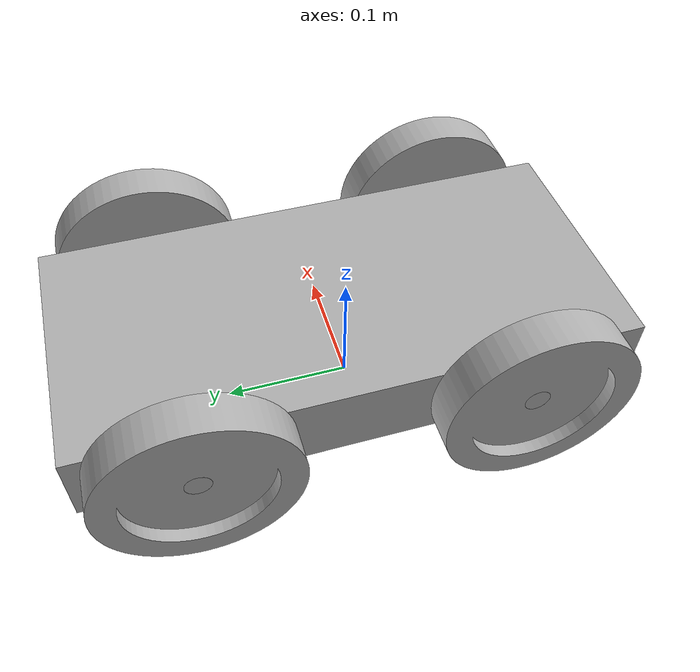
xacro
<?xml version="1.0" ?>
<robot name="plain_vehicle" xmlns:xacro="http://www.ros.org/wiki/xacro">

<xacro:include filename="$(find plain_vehicle_description)/urdf/materials.xacro" />
<xacro:include filename="$(find plain_vehicle_description)/urdf/plain_vehicle.trans" />
<xacro:include filename="$(find plain_vehicle_description)/urdf/plain_vehicle.gazebo" />
<link name="base_link">
  <inertial>
    <origin xyz="0.00020943697105553702 0.012630866610617823 0.07000000000000002" rpy="0 0 0"/>
    <mass value="40.17043511395142"/>
    <inertia ixx="0.61744" iyy="0.147074" izz="0.74052" ixy="0.0" iyz="0.0" ixz="0.0"/>
  </inertial>
  <visual>
    <origin xyz="0 0 0" rpy="0 0 0"/>
    <geometry>
      <mesh filename="file://$(find plain_vehicle_description)/meshes/base_link.stl" scale="0.001 0.001 0.001"/>
    </geometry>
    <material name="silver"/>
  </visual>
  <collision>
    <origin xyz="0 0 0" rpy="0 0 0"/>
    <geometry>
      <mesh filename="file://$(find plain_vehicle_description)/meshes/base_link.stl" scale="0.001 0.001 0.001"/>
    </geometry>
  </collision>
</link>

<link name="wheel_fr_1">
  <inertial>
    <origin xyz="-0.012857142857143025 1.5404344466674047e-14 1.3877787807814457e-17" rpy="0 0 0"/>
    <mass value="3.3662950681378008"/>
    <inertia ixx="0.010574" iyy="0.0055" izz="0.0055" ixy="-0.0" iyz="-0.0" ixz="-0.0"/>
  </inertial>
  <visual>
    <origin xyz="0.1 0.11 -0.07" rpy="0 0 0"/>
    <geometry>
      <mesh filename="file://$(find plain_vehicle_description)/meshes/wheel_fr_1.stl" scale="0.001 0.001 0.001"/>
    </geometry>
    <material name="silver"/>
  </visual>
  <collision>
    <origin xyz="0.1 0.11 -0.07" rpy="0 0 0"/>
    <geometry>
      <mesh filename="file://$(find plain_vehicle_description)/meshes/wheel_fr_1.stl" scale="0.001 0.001 0.001"/>
    </geometry>
  </collision>
</link>

<link name="wheel_rr_1">
  <inertial>
    <origin xyz="-0.0128571428571429 1.532107773982716e-14 1.3877787807814457e-16" rpy="0 0 0"/>
    <mass value="3.366295068137801"/>
    <inertia ixx="0.010574" iyy="0.0055" izz="0.0055" ixy="0.0" iyz="0.0" ixz="-0.0"/>
  </inertial>
  <visual>
    <origin xyz="0.1 -0.14 -0.07" rpy="0 0 0"/>
    <geometry>
      <mesh filename="file://$(find plain_vehicle_description)/meshes/wheel_rr_1.stl" scale="0.001 0.001 0.001"/>
    </geometry>
    <material name="silver"/>
  </visual>
  <collision>
    <origin xyz="0.1 -0.14 -0.07" rpy="0 0 0"/>
    <geometry>
      <mesh filename="file://$(find plain_vehicle_description)/meshes/wheel_rr_1.stl" scale="0.001 0.001 0.001"/>
    </geometry>
  </collision>
</link>

<link name="wheel_rl_1">
  <inertial>
    <origin xyz="0.012857142857142914 -1.534883331544279e-14 -1.3877787807814457e-17" rpy="0 0 0"/>
    <mass value="3.366295068137801"/>
    <inertia ixx="0.010574" iyy="0.0055" izz="0.0055" ixy="-0.0" iyz="-0.0" ixz="0.0"/>
  </inertial>
  <visual>
    <origin xyz="-0.1 -0.14 -0.07" rpy="0 0 0"/>
    <geometry>
      <mesh filename="file://$(find plain_vehicle_description)/meshes/wheel_rl_1.stl" scale="0.001 0.001 0.001"/>
    </geometry>
    <material name="silver"/>
  </visual>
  <collision>
    <origin xyz="-0.1 -0.14 -0.07" rpy="0 0 0"/>
    <geometry>
      <mesh filename="file://$(find plain_vehicle_description)/meshes/wheel_rl_1.stl" scale="0.001 0.001 0.001"/>
    </geometry>
  </collision>
</link>

<link name="wheel_fl_1">
  <inertial>
    <origin xyz="0.012857142857142817 -1.5404344466674047e-14 1.3877787807814457e-17" rpy="0 0 0"/>
    <mass value="3.3662950681378008"/>
    <inertia ixx="0.010574" iyy="0.0055" izz="0.0055" ixy="0.0" iyz="-0.0" ixz="-0.0"/>
  </inertial>
  <visual>
    <origin xyz="-0.1 0.11 -0.07" rpy="0 0 0"/>
    <geometry>
      <mesh filename="file://$(find plain_vehicle_description)/meshes/wheel_fl_1.stl" scale="0.001 0.001 0.001"/>
    </geometry>
    <material name="silver"/>
  </visual>
  <collision>
    <origin xyz="-0.1 0.11 -0.07" rpy="0 0 0"/>
    <geometry>
      <mesh filename="file://$(find plain_vehicle_description)/meshes/wheel_fl_1.stl" scale="0.001 0.001 0.001"/>
    </geometry>
  </collision>
</link>

<joint name="o_fr" type="continuous">
  <origin xyz="-0.1 -0.11 0.07" rpy="0 0 0"/>
  <parent link="base_link"/>
  <child link="wheel_fr_1"/>
  <axis xyz="1.0 0.0 0.0"/>
</joint>

<joint name="o_rr" type="continuous">
  <origin xyz="-0.1 0.14 0.07" rpy="0 0 0"/>
  <parent link="base_link"/>
  <child link="wheel_rr_1"/>
  <axis xyz="1.0 0.0 0.0"/>
</joint>

<joint name="o_rl" type="continuous">
  <origin xyz="0.1 0.14 0.07" rpy="0 0 0"/>
  <parent link="base_link"/>
  <child link="wheel_rl_1"/>
  <axis xyz="1.0 0.0 0.0"/>
</joint>

<joint name="o_fl" type="continuous">
  <origin xyz="0.1 -0.11 0.07" rpy="0 0 0"/>
  <parent link="base_link"/>
  <child link="wheel_fl_1"/>
  <axis xyz="1.0 0.0 0.0"/>
</joint>

</robot>

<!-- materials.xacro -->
<robot name="plain_vehicle" xmlns:xacro="http://www.ros.org/wiki/xacro" >

<material name="silver">
  <color rgba="0.700 0.700 0.700 1.000"/>
</material>

</robot>

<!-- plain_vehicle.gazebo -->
<robot name="plain_vehicle" xmlns:xacro="http://www.ros.org/wiki/xacro" >

<xacro:property name="body_color" value="Gazebo/Silver" />

<gazebo>
  <plugin name="control" filename="libgazebo_ros_control.so"/>
</gazebo>
<gazebo reference="base_link">
  <material>${body_color}</material>
  <mu1>0.2</mu1>
  <mu2>0.2</mu2>
  <self_collide>true</self_collide>
  <gravity>true</gravity>
</gazebo>

<gazebo reference="wheel_fr_1">
  <material>${body_color}</material>
  <mu1>0.2</mu1>
  <mu2>0.2</mu2>
  <self_collide>true</self_collide>
</gazebo>

<gazebo reference="wheel_rr_1">
  <material>${body_color}</material>
  <mu1>0.2</mu1>
  <mu2>0.2</mu2>
  <self_collide>true</self_collide>
</gazebo>

<gazebo reference="wheel_rl_1">
  <material>${body_color}</material>
  <mu1>0.2</mu1>
  <mu2>0.2</mu2>
  <self_collide>true</self_collide>
</gazebo>

<gazebo reference="wheel_fl_1">
  <material>${body_color}</material>
  <mu1>0.2</mu1>
  <mu2>0.2</mu2>
  <self_collide>true</self_collide>
</gazebo>

</robot>
